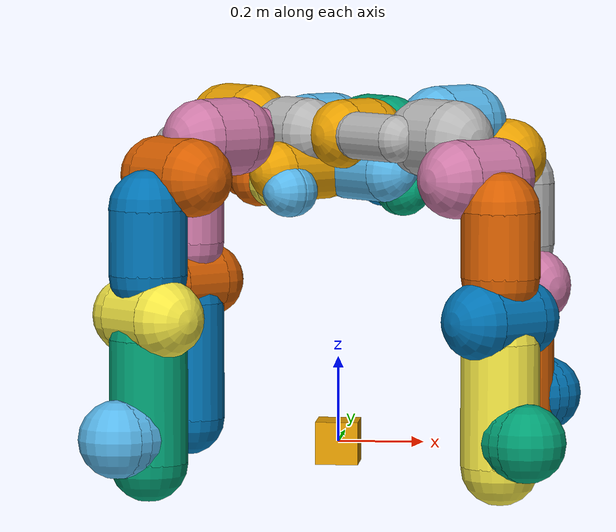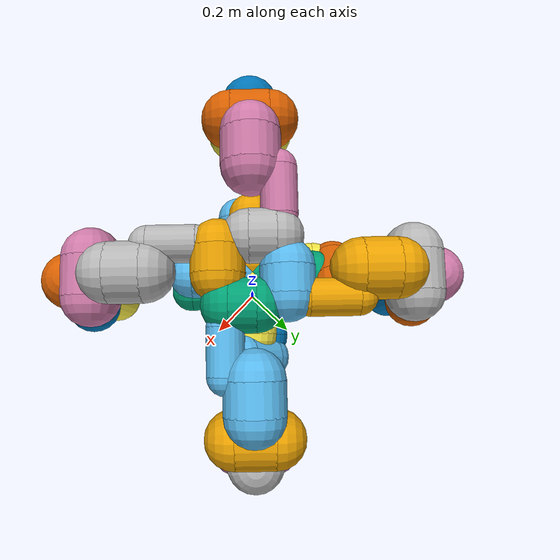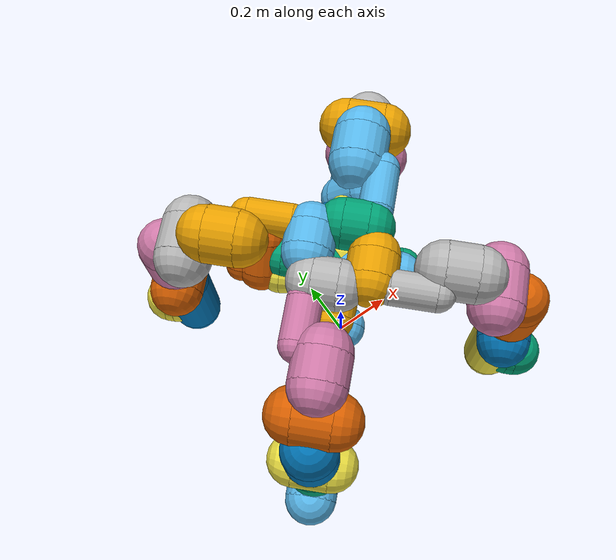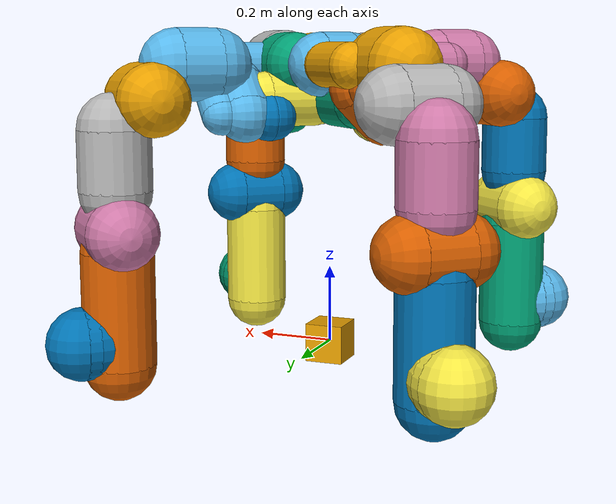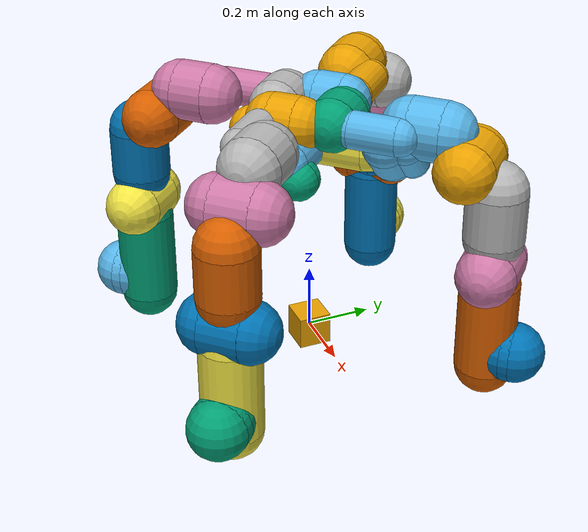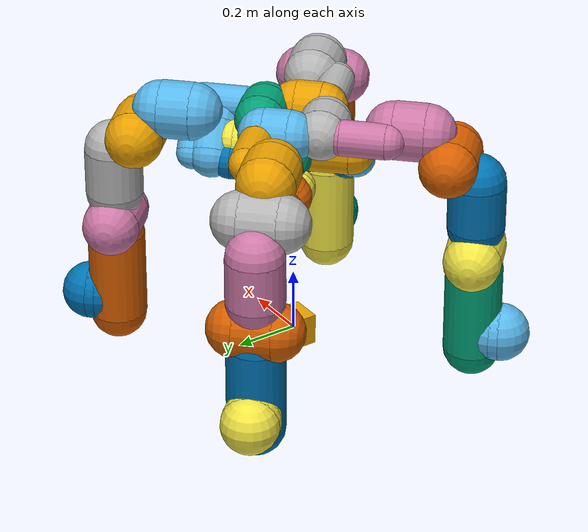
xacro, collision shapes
<?xml version='1.0' encoding='utf-8'?>
<robot xmlns:xacro="http://www.ros.org/wiki/xacro" name="panda">
  <xacro:arg name="arm_id_1" default="panda01"/> <!-- Name of this panda -->
  <xacro:arg name="arm_id_2" default="panda02"/> <!-- Name of this panda -->
  <xacro:arg name="arm_id_3" default="panda03"/> <!-- Name of this panda -->
  <xacro:arg name="arm_id_4" default="panda04"/> <!-- Name of this panda -->
  <xacro:arg name="hand_1" default="false"/> <!-- Should a franka_gripper be mounted at the flange?" -->
  <xacro:arg name="hand_2" default="false"/> <!-- Should a franka_gripper be mounted at the flange?" -->
  <xacro:arg name="hand_3" default="true"/> <!-- Should a franka_gripper be mounted at the flange?" -->
  <xacro:arg name="hand_4" default="true"/> <!-- Should a franka_gripper be mounted at the flange?" -->
  <xacro:arg name="robot_ip_1" default=""/> <!-- IP address or hostname of the robot" -->
  <xacro:arg name="robot_ip_2" default=""/> <!-- IP address or hostname of the robot" -->
  <xacro:arg name="use_fake_hardware" default="false"/>
  <xacro:arg name="fake_sensor_commands" default="false"/>
  <xacro:arg name="initial_positions_3" default="0.0 ${-pi/4} 0.0 ${-3*pi/4} 0.0 ${pi/2} ${pi/4}"/>
  <xacro:arg name="initial_positions_4" default="0.0 ${-pi/4} 0.0 ${-3*pi/4} 0.0 ${pi/2} ${pi/4}"/>

  <link name="base_link">
    <visual>
      <geometry>
         <box size="0.1 0.1 0.1"/>
      </geometry>
      <origin rpy="0 0 0" xyz="0 0 0"/>
    </visual>
    <collision>
      <geometry>
         <box size="0.1 0.1 0.1"/>
      </geometry>
      <origin rpy="0 0 0" xyz="0 0 0"/>
    </collision>
  </link>

  <xacro:include filename="$(find franka_description)/robots/common/panda_arm.xacro"/>

  <xacro:panda_arm arm_id="$(arg arm_id_1)" connected_to="base_link" rpy="0 0 ${pi/4}" xyz="-0.4 -0.4 0" safety_distance="0.03"/>
  <xacro:panda_arm arm_id="$(arg arm_id_2)" connected_to="base_link" rpy="0 0 ${3*pi/4}" xyz="0.4 -0.4 0" safety_distance="0.03"/>

  <xacro:panda_arm arm_id="$(arg arm_id_3)" connected_to="base_link" rpy="0 0 ${-pi/4}" xyz="-0.4 0.4 0" safety_distance="0.03"/>
  <xacro:panda_arm arm_id="$(arg arm_id_4)" connected_to="base_link" rpy="0 0 ${-3*pi/4}" xyz="0.4 0.4 0" safety_distance="0.03"/>

  <xacro:if value="$(arg hand_1)">
    <xacro:include filename="$(find franka_description)/robots/common/hand.xacro"/>
    <xacro:hand ns="$(arg arm_id_1)" rpy="0 0 ${-pi/4}" connected_to="$(arg arm_id_1)_link8" safety_distance="0.03"/>
  </xacro:if>
  <xacro:if value="$(arg hand_2)">
    <xacro:include filename="$(find franka_description)/robots/common/hand.xacro"/>
    <xacro:hand ns="$(arg arm_id_2)" rpy="0 0 ${-pi/4}" connected_to="$(arg arm_id_2)_link8" safety_distance="0.03"/>
  </xacro:if>
  <xacro:if value="$(arg hand_3)">
    <xacro:include filename="$(find franka_description)/robots/common/hand.xacro"/>
    <xacro:hand ns="$(arg arm_id_3)" rpy="0 0 ${-pi/4}" connected_to="$(arg arm_id_3)_link8" safety_distance="0.03"/>
  </xacro:if>
  <xacro:if value="$(arg hand_4)">
    <xacro:include filename="$(find franka_description)/robots/common/hand.xacro"/>
    <xacro:hand ns="$(arg arm_id_4)" rpy="0 0 ${-pi/4}" connected_to="$(arg arm_id_4)_link8" safety_distance="0.03"/>
  </xacro:if>

  <xacro:include filename="$(find franka_description)/robots/real/dual_panda_arm.ros2_control.xacro"/>
  <xacro:panda_arm_ros2_control ns_1="$(arg arm_id_1)" ns_2="$(arg arm_id_2)" robot_ip_1="$(arg robot_ip_1)" robot_ip_2="$(arg robot_ip_2)" use_fake_hardware="$(arg use_fake_hardware)" fake_sensor_commands="$(arg fake_sensor_commands)"/>
  <xacro:include filename="$(find franka_description)/robots/sim/dual_panda_arm_sim.ros2_control.xacro"/>
  <xacro:dual_panda_mjros_ros2_control
      ns_1="$(arg arm_id_3)"
      ns_2="$(arg arm_id_4)"
      hand_1="$(arg hand_3)"
      hand_2="$(arg hand_4)"
      initial_positions_1="$(arg initial_positions_3)"
      initial_positions_2="$(arg initial_positions_4)"/>
</robot>

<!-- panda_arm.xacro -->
<robot xmlns:xacro="http://www.ros.org/wiki/xacro" name="panda">
  <!-- safety_distance: Minimum safety distance in [m] by which the collision volumes are expanded and which is enforced during robot motions -->
  <!-- arm_id: Namespace of the panda arm. Serves to differentiate between arms in case of multiple instances. -->
  <xacro:macro name="panda_arm" params="arm_id:='panda' description_pkg:='franka_description' connected_to:='' xyz:='0 0 0' rpy:='0 0 0' safety_distance:=0 add_inertials:=false">
    <xacro:unless value="${not connected_to}">
      <joint name="${arm_id}_joint_${connected_to}" type="fixed">
        <parent link="${connected_to}"/>
        <child link="${arm_id}_link0"/>
        <origin rpy="${rpy}" xyz="${xyz}"/>
      </joint>
    </xacro:unless>
    <link name="${arm_id}_link0">
      <xacro:if value="${add_inertials}">
        <inertial>
          <origin rpy="0 0 0" xyz="0 0 0.05"/>
          <mass value="2.9"/>
          <inertia ixx="0.1" ixy="0" ixz="0" iyy="0.1" iyz="0" izz="0.1"/>
        </inertial>
      </xacro:if>
      <visual>
        <geometry>
          <mesh filename="package://${description_pkg}/meshes/visual/link0.dae"/>
        </geometry>
      </visual>
      <collision>
        <origin xyz="-0.075 0 0.06" rpy="0 ${pi/2} 0"/>
        <geometry>
          <cylinder radius="${0.06+safety_distance}" length="0.03" />
        </geometry>
      </collision>
      <collision>
        <origin xyz="-0.06 0 0.06" rpy="0 0 0"/>
        <geometry>
          <sphere radius="${0.06+safety_distance}" />
        </geometry>
      </collision>
      <collision>
        <origin xyz="-0.09 0 0.06" rpy="0 0 0"/>
        <geometry>
          <sphere radius="${0.06+safety_distance}" />
        </geometry>
      </collision>
    </link>
    <link name="${arm_id}_link1">
      <xacro:if value="${add_inertials}">
        <inertial>
          <origin rpy="0 0 0" xyz="0 -0.04 -0.05"/>
          <mass value="2.7"/>
          <inertia ixx="0.1" ixy="0" ixz="0" iyy="0.1" iyz="0" izz="0.1"/>
        </inertial>
      </xacro:if>
      <visual>
        <geometry>
          <mesh filename="package://${description_pkg}/meshes/visual/link1.dae"/>
        </geometry>
      </visual>
      <collision>
        <origin xyz="0 0 -0.1915" rpy="0 0 0"/>
        <geometry>
          <cylinder radius="${0.06+safety_distance}" length="0.2830" />
        </geometry>
      </collision>
      <collision>
        <origin xyz="0 0 -0.333" rpy="0 0 0"/>
        <geometry>
          <sphere radius="${0.06+safety_distance}" />
        </geometry>
      </collision>
      <collision>
        <origin xyz="0 0 -0.05" rpy="0 0 0"/>
        <geometry>
          <sphere radius="${0.06+safety_distance}" />
        </geometry>
      </collision>
    </link>
    <joint name="${arm_id}_joint1" type="revolute">
      <safety_controller k_position="100.0" k_velocity="40.0" soft_lower_limit="-2.8973" soft_upper_limit="2.8973"/>
      <origin rpy="0 0 0" xyz="0 0 0.333"/>
      <parent link="${arm_id}_link0"/>
      <child link="${arm_id}_link1"/>
      <axis xyz="0 0 1"/>
      <limit effort="87" lower="-2.8973" upper="2.8973" velocity="2.1750"/>
    </joint>
    <link name="${arm_id}_link2">
      <xacro:if value="${add_inertials}">
        <inertial>
          <origin rpy="0 0 0" xyz="0 -0.04 0.06"/>
          <mass value="2.73"/>
          <inertia ixx="0.1" ixy="0" ixz="0" iyy="0.1" iyz="0" izz="0.1"/>
        </inertial>
      </xacro:if>
      <visual>
        <geometry>
          <mesh filename="package://${description_pkg}/meshes/visual/link2.dae"/>
        </geometry>
      </visual>
      <collision>
        <origin xyz="0 0 0" rpy="0 0 0"/>
        <geometry>
          <cylinder radius="${0.06+safety_distance}" length="0.12" />
        </geometry>
      </collision>
      <collision>
        <origin xyz="0 0 -0.06" rpy="0 0 0"/>
        <geometry>
          <sphere radius="${0.06+safety_distance}" />
        </geometry>
      </collision>
      <collision>
        <origin xyz="0 0 0.06" rpy="0 0 0"/>
        <geometry>
          <sphere radius="${0.06+safety_distance}" />
        </geometry>
      </collision>
    </link>
    <joint name="${arm_id}_joint2" type="revolute">
      <safety_controller k_position="100.0" k_velocity="40.0" soft_lower_limit="-1.7628" soft_upper_limit="1.7628"/>
      <origin rpy="${-pi/2} 0 0" xyz="0 0 0"/>
      <parent link="${arm_id}_link1"/>
      <child link="${arm_id}_link2"/>
      <axis xyz="0 0 1"/>
      <limit effort="87" lower="-1.7628" upper="1.7628" velocity="2.1750"/>
    </joint>
    <link name="${arm_id}_link3">
      <xacro:if value="${add_inertials}">
        <inertial>
          <origin rpy="0 0 0" xyz="0.01 0.01 -0.05"/>
          <mass value="2.04"/>
          <inertia ixx="0.1" ixy="0" ixz="0" iyy="0.1" iyz="0" izz="0.1"/>
        </inertial>
      </xacro:if>
      <visual>
        <geometry>
          <mesh filename="package://${description_pkg}/meshes/visual/link3.dae"/>
        </geometry>
      </visual>
      <collision>
        <origin xyz="0 0 -0.145" rpy="0 0 0"/>
        <geometry>
          <cylinder radius="${0.06+safety_distance}" length="0.15" />
        </geometry>
      </collision>
      <collision>
        <origin xyz="0 0 -0.22" rpy="0 0 0"/>
        <geometry>
          <sphere radius="${0.06+safety_distance}" />
        </geometry>
      </collision>
      <collision>
        <origin xyz="0 0 -0.07" rpy="0 0 0"/>
        <geometry>
          <sphere radius="${0.06+safety_distance}" />
        </geometry>
      </collision>
    </link>
    <joint name="${arm_id}_joint3" type="revolute">
      <safety_controller k_position="100.0" k_velocity="40.0" soft_lower_limit="-2.8973" soft_upper_limit="2.8973"/>
      <origin rpy="${pi/2} 0 0" xyz="0 -0.316 0"/>
      <parent link="${arm_id}_link2"/>
      <child link="${arm_id}_link3"/>
      <axis xyz="0 0 1"/>
      <limit effort="87" lower="-2.8973" upper="2.8973" velocity="2.1750"/>
    </joint>
    <link name="${arm_id}_link4">
      <xacro:if value="${add_inertials}">
        <inertial>
          <origin rpy="0 0 0" xyz="-0.03 0.03 0.02"/>
          <mass value="2.08"/>
          <inertia ixx="0.1" ixy="0" ixz="0" iyy="0.1" iyz="0" izz="0.1"/>
        </inertial>
      </xacro:if>
      <visual>
        <geometry>
          <mesh filename="package://${description_pkg}/meshes/visual/link4.dae"/>
        </geometry>
      </visual>
      <collision>
        <origin xyz="0 0 0" rpy="0 0 0"/>
        <geometry>
          <cylinder radius="${0.06+safety_distance}" length="0.12" />
        </geometry>
      </collision>
      <collision>
        <origin xyz="0 0 0.06" rpy="0 0 0"/>
        <geometry>
          <sphere radius="${0.06+safety_distance}" />
        </geometry>
      </collision>
      <collision>
        <origin xyz="0 0 -0.06" rpy="0 0 0"/>
        <geometry>
          <sphere radius="${0.06+safety_distance}" />
        </geometry>
      </collision>
    </link>
    <joint name="${arm_id}_joint4" type="revolute">
      <safety_controller k_position="100.0" k_velocity="40.0" soft_lower_limit="-3.0718" soft_upper_limit="-0.0698"/>
      <origin rpy="${pi/2} 0 0" xyz="0.0825 0 0"/>
      <parent link="${arm_id}_link3"/>
      <child link="${arm_id}_link4"/>
      <axis xyz="0 0 1"/>
      <limit effort="87" lower="-3.0718" upper="-0.0698" velocity="2.1750"/>
    </joint>
    <link name="${arm_id}_link5">
      <xacro:if value="${add_inertials}">
        <inertial>
          <origin rpy="0 0 0" xyz="0 0.04 -0.12"/>
          <mass value="3.0"/>
          <inertia ixx="0.1" ixy="0" ixz="0" iyy="0.1" iyz="0" izz="0.1"/>
        </inertial>
      </xacro:if>
      <visual>
        <geometry>
          <mesh filename="package://${description_pkg}/meshes/visual/link5.dae"/>
        </geometry>
      </visual>
      <collision>
        <origin xyz="0 0 -0.26" rpy="0 0 0"/>
        <geometry>
          <cylinder radius="${0.06+safety_distance}" length="0.1" />
        </geometry>
      </collision>
      <collision>
        <origin xyz="0 0 -0.31" rpy="0 0 0"/>
        <geometry>
          <sphere radius="${0.06+safety_distance}" />
        </geometry>
      </collision>
      <collision>
        <origin xyz="0 0 -0.21" rpy="0 0 0"/>
        <geometry>
          <sphere radius="${0.06+safety_distance}" />
        </geometry>
      </collision>
      <collision>
        <origin xyz="0 0.08 -0.13" rpy="0 0 0"/>
        <geometry>
          <cylinder radius="${0.025+safety_distance}" length="0.14" />
        </geometry>
      </collision>
      <collision>
        <origin xyz="0 0.08 -0.06" rpy="0 0 0"/>
        <geometry>
          <sphere radius="${0.025+safety_distance}" />
        </geometry>
      </collision>
      <collision>
        <origin xyz="0 0.08 -0.20" rpy="0 0 0"/>
        <geometry>
          <sphere radius="${0.025+safety_distance}" />
        </geometry>
      </collision>

    </link>
    <joint name="${arm_id}_joint5" type="revolute">
      <safety_controller k_position="100.0" k_velocity="40.0" soft_lower_limit="-2.8973" soft_upper_limit="2.8973"/>
      <origin rpy="${-pi/2} 0 0" xyz="-0.0825 0.384 0"/>
      <parent link="${arm_id}_link4"/>
      <child link="${arm_id}_link5"/>
      <axis xyz="0 0 1"/>
      <limit effort="12" lower="-2.8973" upper="2.8973" velocity="2.6100"/>
    </joint>
    <link name="${arm_id}_link6">
      <xacro:if value="${add_inertials}">
        <inertial>
          <origin rpy="0 0 0" xyz="0.04 0 0"/>
          <mass value="1.3"/>
          <inertia ixx="0.1" ixy="0" ixz="0" iyy="0.1" iyz="0" izz="0.1"/>
        </inertial>
      </xacro:if>
      <visual>
        <geometry>
          <mesh filename="package://${description_pkg}/meshes/visual/link6.dae"/>
        </geometry>
      </visual>
      <collision>
        <origin xyz="0 0 -0.03" rpy="0 0 0"/>
        <geometry>
          <cylinder radius="${0.05+safety_distance}" length="0.08" />
        </geometry>
      </collision>
      <collision>
        <origin xyz="0 0 0.01" rpy="0 0 0"/>
        <geometry>
          <sphere radius="${0.05+safety_distance}" />
        </geometry>
      </collision>
      <collision>
        <origin xyz="0 0 -0.07" rpy="0 0 0"/>
        <geometry>
          <sphere radius="${0.05+safety_distance}" />
        </geometry>
      </collision>
    </link>
    <joint name="${arm_id}_joint6" type="revolute">
      <safety_controller k_position="100.0" k_velocity="40.0" soft_lower_limit="-0.0175" soft_upper_limit="3.7525"/>
      <origin rpy="${pi/2} 0 0" xyz="0 0 0"/>
      <parent link="${arm_id}_link5"/>
      <child link="${arm_id}_link6"/>
      <axis xyz="0 0 1"/>
      <limit effort="12" lower="-0.0175" upper="3.7525" velocity="2.6100"/>
    </joint>
    <link name="${arm_id}_link7">
      <xacro:if value="${add_inertials}">
        <inertial>
          <origin rpy="0 0 0" xyz="0 0 0.08"/>
          <mass value="0.2"/>
          <inertia ixx="0.1" ixy="0" ixz="0" iyy="0.1" iyz="0" izz="0.1"/>
        </inertial>
      </xacro:if>
      <visual>
        <geometry>
          <mesh filename="package://${description_pkg}/meshes/visual/link7.dae"/>
        </geometry>
      </visual>
      <collision>
        <origin xyz="0 0 0.01" rpy="0 0 0"/>
        <geometry>
          <cylinder radius="${0.04+safety_distance}" length="0.14" />
        </geometry>
      </collision>
      <collision>
        <origin xyz="0 0 0.08" rpy="0 0 0"/>
        <geometry>
          <sphere radius="${0.04+safety_distance}"  />
        </geometry>
      </collision>
      <collision>
        <origin xyz="0 0 -0.06" rpy="0 0 0"/>
        <geometry>
          <sphere radius="${0.04+safety_distance}"  />
        </geometry>
      </collision>
    </link>
    <joint name="${arm_id}_joint7" type="revolute">
      <safety_controller k_position="100.0" k_velocity="40.0" soft_lower_limit="-2.8973" soft_upper_limit="2.8973"/>
      <origin rpy="${pi/2} 0 0" xyz="0.088 0 0"/>
      <parent link="${arm_id}_link6"/>
      <child link="${arm_id}_link7"/>
      <axis xyz="0 0 1"/>
      <limit effort="12" lower="-2.8973" upper="2.8973" velocity="2.6100"/>
    </joint>
    <link name="${arm_id}_link8">
      <xacro:if value="${add_inertials}">
        <inertial>
          <origin rpy="0 0 0" xyz="0 0 0"/>
          <mass value="0.01"/>
          <inertia ixx="0.001" ixy="0" ixz="0" iyy="0.001" iyz="0" izz="0.001"/>
        </inertial>
      </xacro:if>
      <collision>
        <origin xyz="0.0424 0.0424 -0.0250" rpy="${pi} ${pi/2} ${pi/2}"/>
        <geometry>
          <cylinder radius="${0.03+safety_distance}"  length="0.01" />
        </geometry>
      </collision>
      <collision>
        <origin xyz="0.0424 0.0424 -0.02" rpy="0 0 0"/>
        <geometry>
          <sphere radius="${0.03+safety_distance}"  />
        </geometry>
      </collision>
      <collision>
        <origin xyz="0.0424 0.0424 -0.03" rpy="0 0 0"/>
        <geometry>
          <sphere radius="${0.03+safety_distance}"  />
        </geometry>
      </collision>
    </link>
    <joint name="${arm_id}_joint8" type="fixed">
      <origin rpy="0 0 0" xyz="0 0 0.107"/>
      <parent link="${arm_id}_link7"/>
      <child link="${arm_id}_link8"/>
    </joint>
  </xacro:macro>
</robot>

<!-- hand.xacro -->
<robot xmlns:xacro="http://www.ros.org/wiki/xacro" name="hand">
  <!-- safety_distance: Minimum safety distance in [m] by which the collision volumes are expanded and which is enforced during robot motions -->
  <!-- add_inertials: see panda_arm.xacro - same gate, off by default to keep MuJoCo/real-hardware
       output unchanged; Gazebo call site sets this true. -->
  <xacro:macro name="hand" params="connected_to:='' ns:='' rpy:='0 0 0' xyz:='0 0 0' safety_distance:=0 add_inertials:=false">
    <xacro:unless value="${connected_to == ''}">
      <joint name="${ns}_hand_joint" type="fixed">
        <parent link="${connected_to}"/>
        <child link="${ns}_hand"/>
        <origin xyz="${xyz}" rpy="${rpy}"/>
      </joint>
    </xacro:unless>
    <link name="${ns}_hand">
      <xacro:if value="${add_inertials}">
        <inertial>
          <origin rpy="0 0 0" xyz="0 0 0.04"/>
          <mass value="0.81"/>
          <inertia ixx="0.1" ixy="0" ixz="0" iyy="0.1" iyz="0" izz="0.1"/>
        </inertial>
      </xacro:if>
      <visual>
        <geometry>
          <mesh filename="package://franka_description/meshes/visual/hand.dae"/>
        </geometry>
      </visual>
      <collision>
        <origin xyz="0 0 0.04" rpy="0 ${pi/2} ${pi/2}"/>
        <geometry>
          <cylinder radius="${0.04+safety_distance}" length="0.1"/>
        </geometry>
      </collision>
      <collision>
        <origin xyz="0 -0.05 0.04" rpy="0 0 0"/>
        <geometry>
          <sphere radius="${0.04+safety_distance}"/>
        </geometry>
      </collision>
      <collision>
        <origin xyz="0 0.05 0.04" rpy="0 0 0"/>
        <geometry>
          <sphere radius="${0.04+safety_distance}"/>
        </geometry>
      </collision>
      <collision>
        <origin xyz="0 0 0.1" rpy="0 ${pi/2} ${pi/2}"/>
        <geometry>
          <cylinder radius="${0.02+safety_distance}" length="0.1"/>
        </geometry>
      </collision>
      <collision>
        <origin xyz="0 -0.05 0.1" rpy="0 0 0"/>
        <geometry>
          <sphere radius="${0.02+safety_distance}"/>
        </geometry>
      </collision>
      <collision>
        <origin xyz="0 0.05 0.1" rpy="0 0 0"/>
        <geometry>
          <sphere radius="${0.02+safety_distance}"/>
        </geometry>
      </collision>
    </link>
    <!-- Define the hand_tcp frame -->
    <link name="${ns}_hand_tcp"/>
    <joint name="${ns}_hand_tcp_joint" type="fixed">
      <origin xyz="0 0 0.1034" rpy="0 0 0"/>
      <parent link="${ns}_hand"/>
      <child link="${ns}_hand_tcp"/>
    </joint>
    <link name="${ns}_leftfinger">
      <xacro:if value="${add_inertials}">
        <inertial>
          <origin rpy="0 0 0" xyz="0 0.01 0.02"/>
          <mass value="0.1"/>
          <inertia ixx="0.1" ixy="0" ixz="0" iyy="0.1" iyz="0" izz="0.1"/>
        </inertial>
      </xacro:if>
      <visual>
        <geometry>
          <mesh filename="package://franka_description/meshes/visual/finger.dae"/>
        </geometry>
      </visual>
      <!-- screw mount -->
      <collision>
        <origin xyz="0 18.5e-3 11e-3" rpy="0 0 0" />
        <geometry>
          <box size="22e-3 15e-3 20e-3" />
        </geometry>
      </collision>
      <!-- cartriage sledge -->
      <collision>
        <origin xyz="0 6.8e-3 2.2e-3" rpy="0 0 0" />
        <geometry>
          <box size="22e-3 8.8e-3 3.8e-3" />
        </geometry>
      </collision>
      <!-- diagonal finger -->
      <collision>
        <origin xyz="0 15.9e-3 28.35e-3" rpy="${pi/6} 0 0" />
        <geometry>
          <box size="17.5e-3 7e-3 23.5e-3" />
        </geometry>
      </collision>
      <!-- rubber tip with which to grasp -->
      <collision>
        <origin xyz="0 7.58e-3 45.25e-3" rpy="0 0 0" />
        <geometry>
          <box size="17.5e-3 15.2e-3 18.5e-3" />
        </geometry>
      </collision>
    </link>
    <link name="${ns}_rightfinger">
      <xacro:if value="${add_inertials}">
        <inertial>
          <origin rpy="0 0 0" xyz="0 -0.01 0.02"/>
          <mass value="0.1"/>
          <inertia ixx="0.1" ixy="0" ixz="0" iyy="0.1" iyz="0" izz="0.1"/>
        </inertial>
      </xacro:if>
      <visual>
        <origin xyz="0 0 0" rpy="0 0 ${pi}"/>
        <geometry>
          <mesh filename="package://franka_description/meshes/visual/finger.dae"/>
        </geometry>
      </visual>
      <!-- screw mount -->
      <collision>
        <origin xyz="0 -18.5e-3 11e-3" rpy="0 0 0" />
        <geometry>
          <box size="22e-3 15e-3 20e-3" />
        </geometry>
      </collision>
      <!-- cartriage sledge -->
      <collision>
        <origin xyz="0 -6.8e-3 2.2e-3" rpy="0 0 0" />
        <geometry>
          <box size="22e-3 8.8e-3 3.8e-3" />
        </geometry>
      </collision>
      <!-- diagonal finger -->
      <collision>
        <origin xyz="0 -15.9e-3 28.35e-3" rpy="${-pi/6} 0 0" />
        <geometry>
          <box size="17.5e-3 7e-3 23.5e-3" />
        </geometry>
      </collision>
      <!-- rubber tip with which to grasp -->
      <collision>
        <origin xyz="0 -7.58e-3 45.25e-3" rpy="0 0 0" />
        <geometry>
          <box size="17.5e-3 15.2e-3 18.5e-3" />
        </geometry>
      </collision>
    </link>
    <joint name="${ns}_finger_joint1" type="prismatic">
      <parent link="${ns}_hand"/>
      <child link="${ns}_leftfinger"/>
      <origin xyz="0 0 0.0584" rpy="0 0 0"/>
      <axis xyz="0 1 0"/>
      <limit effort="20" lower="0.0" upper="0.04" velocity="0.2"/>
    </joint>
    <joint name="${ns}_finger_joint2" type="prismatic">
      <parent link="${ns}_hand"/>
      <child link="${ns}_rightfinger"/>
      <origin xyz="0 0 0.0584" rpy="0 0 0"/>
      <axis xyz="0 -1 0"/>
      <limit effort="20" lower="0.0" upper="0.04" velocity="0.2"/>
      <mimic joint="${ns}_finger_joint1"/>
    </joint>
    <gazebo reference="${ns}_hand">
      <selfCollide>false</selfCollide>
    </gazebo>
    <gazebo reference="${ns}_leftfinger">
      <selfCollide>false</selfCollide>
    </gazebo>
    <gazebo reference="${ns}_rightfinger">
      <selfCollide>false</selfCollide>
</gazebo>
  </xacro:macro>
</robot>
